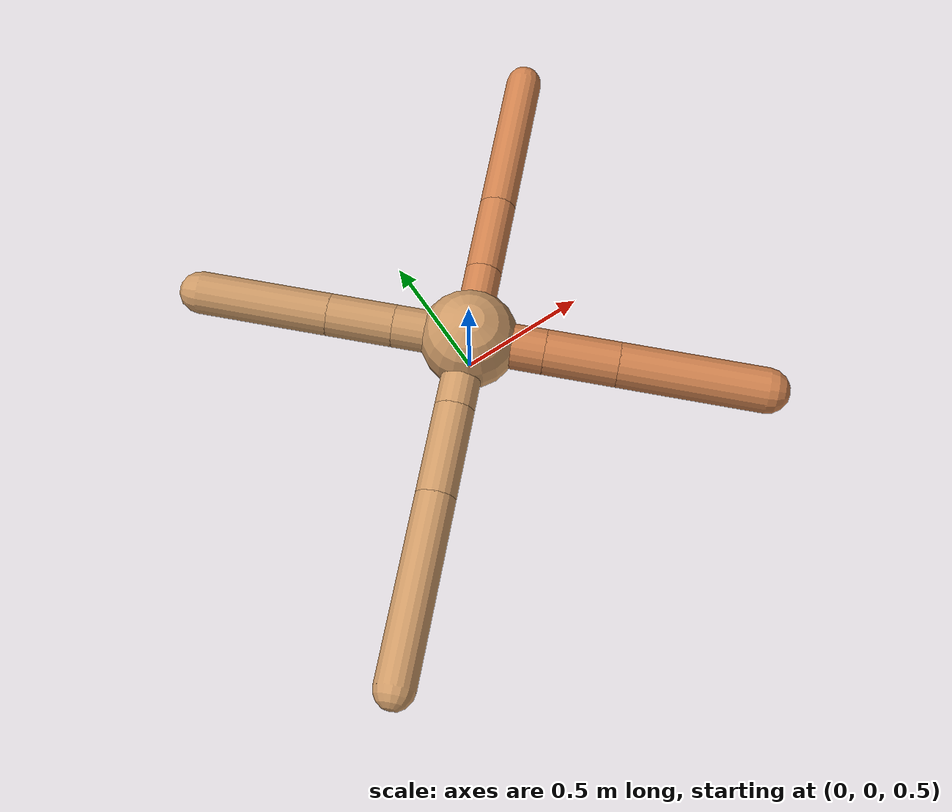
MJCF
<?xml version="1.0" ?>
<mujoco model="ant">

	<compiler angle="degree" coordinate="local" inertiafromgeom="true"/>

	<option integrator="RK4" timestep="0.01"/>

	<custom>

		<numeric data="0.0 0.0 0.55 1.0 0.0 0.0 0.0 0.0 1.0 0.0 -1.0 0.0 -1.0 0.0 1.0" name="init_qpos"/>

	</custom>

	<default>

		<joint armature="1" damping="1" limited="true"/>

		<geom conaffinity="0" condim="3" density="5.0" friction="1.5 0.1 0.1" margin="0.01" rgba="0.8 0.6 0.4 1"/>

	</default>

	<worldbody>

		<body name="torso" pos="0 0 0.75">

			<geom name="torso_geom" pos="0 0 0" size="0.18424014795653568" type="sphere"/>

			<!--joint armature="0" damping="0" limited="false" margin="0.01" name="root" pos="0 0 0" type="free"/-->

			<body name="front_left_leg" pos="0 0 0">

				<geom fromto="0 0 0 0.2 0.2 0" name="aux_1_geom" size="0.06906666889599974" type="capsule" rgba=".8 .5 .3 1"/>

				<body name="aux_1" pos="0.2 0.2 0">

					<joint axis="0 0 1" name="hip_1" pos="0.0 0.0 0.0" range="-40 40" type="hinge"/>

					<geom fromto="0 0 0 0.2065175579488889 0.2065175579488889 0" name="left_leg_geom" size="0.06906666889599974" type="capsule" rgba=".8 .5 .3 1"/>

					<body pos="0.2065175579488889 0.2065175579488889 0" name="front_left_foot">

						<joint axis="-1 1 0" name="ankle_1" pos="0.0 0.0 0.0" range="30 100" type="hinge"/>

						<geom fromto="0 0 0 0.4130351158977778 0.4130351158977778 0" name="left_ankle_geom" size="0.06906666889599974" type="capsule" rgba=".8 .5 .3 1"/>

					</body>

				</body>

			</body>

			<body name="front_right_leg" pos="0 0 0">

				<geom fromto="0 0 0 -0.2 0.2 0" name="aux_2_geom" size="0.07988594079955193" type="capsule"/>

				<body name="aux_2" pos="-0.2 0.2 0">

					<joint axis="0 0 1" name="hip_2" pos="0.0 0.0 0.0" range="-40 40" type="hinge"/>

					<geom fromto="0 0 0 -0.17514645489913117 0.17514645489913117 0" name="right_leg_geom" size="0.07988594079955193" type="capsule"/>

					<body pos="-0.17514645489913117 0.17514645489913117 0" name="front_right_foot">

						<joint axis="1 1 0" name="ankle_2" pos="0.0 0.0 0.0" range="-100 -30" type="hinge"/>

						<geom fromto="0 0 0 -0.35029290979826233 0.35029290979826233 0" name="right_ankle_geom" size="0.07988594079955193" type="capsule"/>

					</body>

				</body>

			</body>

			<body name="left_back_leg" pos="0 0 0">

				<geom fromto="0 0 0 -0.2 -0.2 0" name="aux_3_geom" size="0.07419057665575496" type="capsule"/>

				<body name="aux_3" pos="-0.2 -0.2 0">

					<joint axis="0 0 1" name="hip_3" pos="0.0 0.0 0.0" range="-40 40" type="hinge"/>

					<geom fromto="0 0 0 -0.2386774218330357 -0.2386774218330357 0" name="back_leg_geom" size="0.07419057665575496" type="capsule"/>

					<body pos="-0.2386774218330357 -0.2386774218330357 0" name="left_back_foot">

						<joint axis="-1 1 0" name="ankle_3" pos="0.0 0.0 0.0" range="-100 -30" type="hinge"/>

						<geom fromto="0 0 0 -0.4773548436660714 -0.4773548436660714 0" name="third_ankle_geom" size="0.07419057665575496" type="capsule"/>

					</body>

				</body>

			</body>

			<body name="right_back_leg" pos="0 0 0">

				<geom fromto="0 0 0 0.2 -0.2 0" name="aux_4_geom" size="0.08463021658579431" type="capsule" rgba=".8 .5 .3 1"/>

				<body name="aux_4" pos="0.2 -0.2 0">

					<joint axis="0 0 1" name="hip_4" pos="0.0 0.0 0.0" range="-40 40" type="hinge"/>

					<geom fromto="0 0 0 0.19328880535457726 -0.19328880535457726 0" name="rightback_leg_geom" size="0.08463021658579431" type="capsule" rgba=".8 .5 .3 1"/>

					<body pos="0.19328880535457726 -0.19328880535457726 0" name="right_back_foot">

						<joint axis="1 1 0" name="ankle_4" pos="0.0 0.0 0.0" range="30 100" type="hinge"/>

						<geom fromto="0 0 0 0.38657761070915453 -0.38657761070915453 0" name="fourth_ankle_geom" size="0.08463021658579431" type="capsule" rgba=".8 .5 .3 1"/>

					</body>

				</body>

			</body>

		</body>

	</worldbody>

	<actuator>

		<motor ctrllimited="true" ctrlrange="-1.0 1.0" joint="hip_4" gear="150"/>

		<motor ctrllimited="true" ctrlrange="-1.0 1.0" joint="ankle_4" gear="150"/>

		<motor ctrllimited="true" ctrlrange="-1.0 1.0" joint="hip_1" gear="150"/>

		<motor ctrllimited="true" ctrlrange="-1.0 1.0" joint="ankle_1" gear="150"/>

		<motor ctrllimited="true" ctrlrange="-1.0 1.0" joint="hip_2" gear="150"/>

		<motor ctrllimited="true" ctrlrange="-1.0 1.0" joint="ankle_2" gear="150"/>

		<motor ctrllimited="true" ctrlrange="-1.0 1.0" joint="hip_3" gear="150"/>

		<motor ctrllimited="true" ctrlrange="-1.0 1.0" joint="ankle_3" gear="150"/>

	</actuator>

</mujoco>
